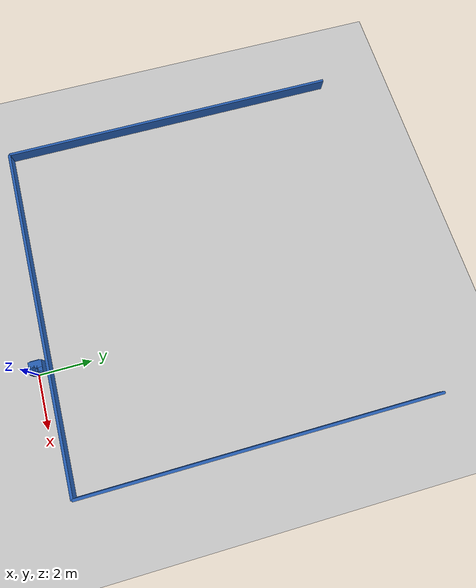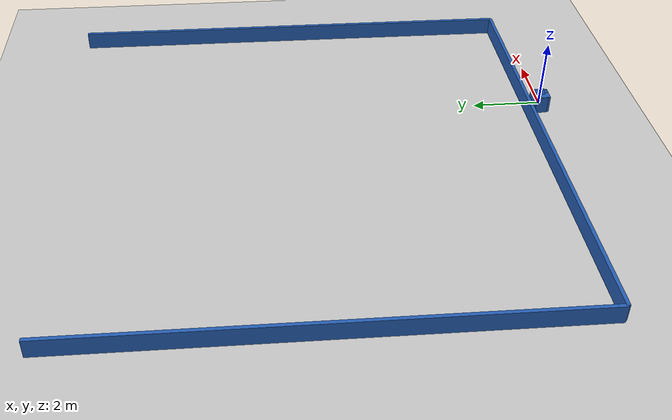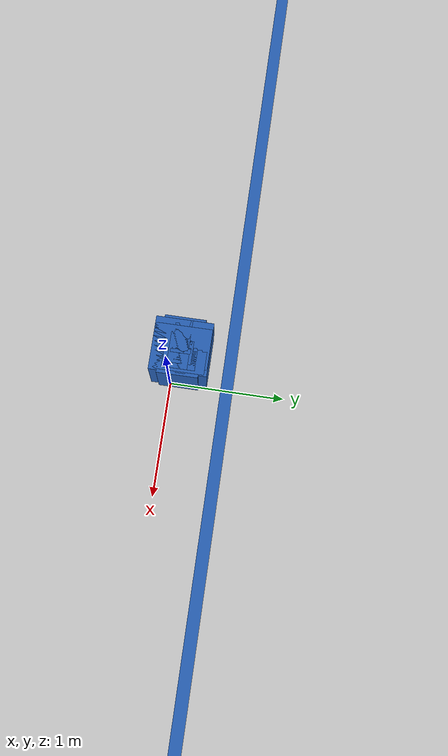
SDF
<?xml version="1.0" ?>
    <sdf version="1.5">
      <world name="default">
        <!-- A global light source -->
        <include>
          <uri>model://sun</uri>
        </include>
        <!-- A ground plane -->
        <include>
          <uri>model://ground_plane</uri>
        </include>

    <model name='libopen_space_final_T2B_57_10'>
      <static>1</static>
      <pose frame=''>-0.225000 0.075000 0.000000 0.000000 0.000000 0.000000</pose>
      <link name='link'>
        <inertial>
          <mass>1</mass>
          <inertia>
            <ixx>0.145833</ixx>
            <ixy>0</ixy>
            <ixz>0</ixz>
            <iyy>0.145833</iyy>
            <iyz>0</iyz>
            <izz>0.125</izz>
          </inertia>
        </inertial>
        <collision name='collision'>
          <geometry>
            <box>
              <size>0.46 0.49 1</size>
            </box>
          </geometry>
          <max_contacts>10</max_contacts>
          <surface>
            <contact>
              <ode/>
            </contact>
            <bounce/>
            <friction>
              <torsional>
                <ode/>
              </torsional>
              <ode/>
            </friction>
          </surface>
        </collision>
        <visual name='visual'>
          <geometry>
            <box>
              <size>0.46 0.49 1</size>
            </box>
          </geometry>
	    <material>
              <ambient>0.152000 0.379000 0.720000 1</ambient>
	      <diffuse>0.152000 0.379000 0.720000 1</diffuse>
          </material>
          <material>
            <script>
              <name>Gazebo/Grey</name>
              <uri>file://media/materials/scripts/gazebo.material</uri>
            </script>
          </material>
        </visual>
        <self_collide>0</self_collide>
        <kinematic>0</kinematic>
        <gravity>1</gravity>
      </link>
      <plugin name='libopen_space_final_T2B_57_10' filename='libopen_space_final_T2B_57_10.so'/>
    </model>

    <model name='libopen_space_final_T2B_118_43'>
      <static>1</static>
      <pose frame=''>-0.225000 0.075000 0.000000 0.000000 0.000000 0.000000</pose>
      <link name='link'>
        <inertial>
          <mass>1</mass>
          <inertia>
            <ixx>0.145833</ixx>
            <ixy>0</ixy>
            <ixz>0</ixz>
            <iyy>0.145833</iyy>
            <iyz>0</iyz>
            <izz>0.125</izz>
          </inertia>
        </inertial>
        <collision name='collision'>
          <geometry>
            <box>
              <size>0.46 0.13 1</size>
            </box>
          </geometry>
          <max_contacts>10</max_contacts>
          <surface>
            <contact>
              <ode/>
            </contact>
            <bounce/>
            <friction>
              <torsional>
                <ode/>
              </torsional>
              <ode/>
            </friction>
          </surface>
        </collision>
        <visual name='visual'>
          <geometry>
            <box>
              <size>0.46 0.13 1</size>
            </box>
          </geometry>
	    <material>
              <ambient>0.152000 0.379000 0.720000 1</ambient>
	      <diffuse>0.152000 0.379000 0.720000 1</diffuse>
          </material>
          <material>
            <script>
              <name>Gazebo/Grey</name>
              <uri>file://media/materials/scripts/gazebo.material</uri>
            </script>
          </material>
        </visual>
        <self_collide>0</self_collide>
        <kinematic>0</kinematic>
        <gravity>1</gravity>
      </link>
      <plugin name='libopen_space_final_T2B_118_43' filename='libopen_space_final_T2B_118_43.so'/>
    </model>

    <model name='libopen_space_final_T2B_111_18'>
      <static>1</static>
      <pose frame=''>-0.225000 0.075000 0.000000 0.000000 0.000000 0.000000</pose>
      <link name='link'>
        <inertial>
          <mass>1</mass>
          <inertia>
            <ixx>0.145833</ixx>
            <ixy>0</ixy>
            <ixz>0</ixz>
            <iyy>0.145833</iyy>
            <iyz>0</iyz>
            <izz>0.125</izz>
          </inertia>
        </inertial>
        <collision name='collision'>
          <geometry>
            <box>
              <size>0.25 0.10 1</size>
            </box>
          </geometry>
          <max_contacts>10</max_contacts>
          <surface>
            <contact>
              <ode/>
            </contact>
            <bounce/>
            <friction>
              <torsional>
                <ode/>
              </torsional>
              <ode/>
            </friction>
          </surface>
        </collision>
        <visual name='visual'>
          <geometry>
            <box>
              <size>0.25 0.10 1</size>
            </box>
          </geometry>
	    <material>
              <ambient>0.152000 0.379000 0.720000 1</ambient>
	      <diffuse>0.152000 0.379000 0.720000 1</diffuse>
          </material>
          <material>
            <script>
              <name>Gazebo/Grey</name>
              <uri>file://media/materials/scripts/gazebo.material</uri>
            </script>
          </material>
        </visual>
        <self_collide>0</self_collide>
        <kinematic>0</kinematic>
        <gravity>1</gravity>
      </link>
      <plugin name='libopen_space_final_T2B_111_18' filename='libopen_space_final_T2B_111_18.so'/>
    </model>

    <model name='libopen_space_final_T2B_55_44'>
      <static>1</static>
      <pose frame=''>-0.225000 0.075000 0.000000 0.000000 0.000000 0.000000</pose>
      <link name='link'>
        <inertial>
          <mass>1</mass>
          <inertia>
            <ixx>0.145833</ixx>
            <ixy>0</ixy>
            <ixz>0</ixz>
            <iyy>0.145833</iyy>
            <iyz>0</iyz>
            <izz>0.125</izz>
          </inertia>
        </inertial>
        <collision name='collision'>
          <geometry>
            <box>
              <size>0.30 0.20 1</size>
            </box>
          </geometry>
          <max_contacts>10</max_contacts>
          <surface>
            <contact>
              <ode/>
            </contact>
            <bounce/>
            <friction>
              <torsional>
                <ode/>
              </torsional>
              <ode/>
            </friction>
          </surface>
        </collision>
        <visual name='visual'>
          <geometry>
            <box>
              <size>0.30 0.20 1</size>
            </box>
          </geometry>
	    <material>
              <ambient>0.152000 0.379000 0.720000 1</ambient>
	      <diffuse>0.152000 0.379000 0.720000 1</diffuse>
          </material>
          <material>
            <script>
              <name>Gazebo/Grey</name>
              <uri>file://media/materials/scripts/gazebo.material</uri>
            </script>
          </material>
        </visual>
        <self_collide>0</self_collide>
        <kinematic>0</kinematic>
        <gravity>1</gravity>
      </link>
      <plugin name='libopen_space_final_T2B_55_44' filename='libopen_space_final_T2B_55_44.so'/>
    </model>

    <model name='libopen_space_final_T2B_141_33'>
      <static>1</static>
      <pose frame=''>-0.225000 0.075000 0.000000 0.000000 0.000000 0.000000</pose>
      <link name='link'>
        <inertial>
          <mass>1</mass>
          <inertia>
            <ixx>0.145833</ixx>
            <ixy>0</ixy>
            <ixz>0</ixz>
            <iyy>0.145833</iyy>
            <iyz>0</iyz>
            <izz>0.125</izz>
          </inertia>
        </inertial>
        <collision name='collision'>
          <geometry>
            <box>
              <size>0.39 0.21 1</size>
            </box>
          </geometry>
          <max_contacts>10</max_contacts>
          <surface>
            <contact>
              <ode/>
            </contact>
            <bounce/>
            <friction>
              <torsional>
                <ode/>
              </torsional>
              <ode/>
            </friction>
          </surface>
        </collision>
        <visual name='visual'>
          <geometry>
            <box>
              <size>0.39 0.21 1</size>
            </box>
          </geometry>
	    <material>
              <ambient>0.152000 0.379000 0.720000 1</ambient>
	      <diffuse>0.152000 0.379000 0.720000 1</diffuse>
          </material>
          <material>
            <script>
              <name>Gazebo/Grey</name>
              <uri>file://media/materials/scripts/gazebo.material</uri>
            </script>
          </material>
        </visual>
        <self_collide>0</self_collide>
        <kinematic>0</kinematic>
        <gravity>1</gravity>
      </link>
      <plugin name='libopen_space_final_T2B_141_33' filename='libopen_space_final_T2B_141_33.so'/>
    </model>

    <model name='libopen_space_final_T2B_134_32'>
      <static>1</static>
      <pose frame=''>-0.225000 0.075000 0.000000 0.000000 0.000000 0.000000</pose>
      <link name='link'>
        <inertial>
          <mass>1</mass>
          <inertia>
            <ixx>0.145833</ixx>
            <ixy>0</ixy>
            <ixz>0</ixz>
            <iyy>0.145833</iyy>
            <iyz>0</iyz>
            <izz>0.125</izz>
          </inertia>
        </inertial>
        <collision name='collision'>
          <geometry>
            <box>
              <size>0.39 0.15 1</size>
            </box>
          </geometry>
          <max_contacts>10</max_contacts>
          <surface>
            <contact>
              <ode/>
            </contact>
            <bounce/>
            <friction>
              <torsional>
                <ode/>
              </torsional>
              <ode/>
            </friction>
          </surface>
        </collision>
        <visual name='visual'>
          <geometry>
            <box>
              <size>0.39 0.15 1</size>
            </box>
          </geometry>
	    <material>
              <ambient>0.152000 0.379000 0.720000 1</ambient>
	      <diffuse>0.152000 0.379000 0.720000 1</diffuse>
          </material>
          <material>
            <script>
              <name>Gazebo/Grey</name>
              <uri>file://media/materials/scripts/gazebo.material</uri>
            </script>
          </material>
        </visual>
        <self_collide>0</self_collide>
        <kinematic>0</kinematic>
        <gravity>1</gravity>
      </link>
      <plugin name='libopen_space_final_T2B_134_32' filename='libopen_space_final_T2B_134_32.so'/>
    </model>

    <model name='libopen_space_final_T2B_67_47'>
      <static>1</static>
      <pose frame=''>-0.225000 0.075000 0.000000 0.000000 0.000000 0.000000</pose>
      <link name='link'>
        <inertial>
          <mass>1</mass>
          <inertia>
            <ixx>0.145833</ixx>
            <ixy>0</ixy>
            <ixz>0</ixz>
            <iyy>0.145833</iyy>
            <iyz>0</iyz>
            <izz>0.125</izz>
          </inertia>
        </inertial>
        <collision name='collision'>
          <geometry>
            <box>
              <size>0.11 0.17 1</size>
            </box>
          </geometry>
          <max_contacts>10</max_contacts>
          <surface>
            <contact>
              <ode/>
            </contact>
            <bounce/>
            <friction>
              <torsional>
                <ode/>
              </torsional>
              <ode/>
            </friction>
          </surface>
        </collision>
        <visual name='visual'>
          <geometry>
            <box>
              <size>0.11 0.17 1</size>
            </box>
          </geometry>
	    <material>
              <ambient>0.152000 0.379000 0.720000 1</ambient>
	      <diffuse>0.152000 0.379000 0.720000 1</diffuse>
          </material>
          <material>
            <script>
              <name>Gazebo/Grey</name>
              <uri>file://media/materials/scripts/gazebo.material</uri>
            </script>
          </material>
        </visual>
        <self_collide>0</self_collide>
        <kinematic>0</kinematic>
        <gravity>1</gravity>
      </link>
      <plugin name='libopen_space_final_T2B_67_47' filename='libopen_space_final_T2B_67_47.so'/>
    </model>

    <model name='libopen_space_final_T2B_115_24'>
      <static>1</static>
      <pose frame=''>-0.225000 0.075000 0.000000 0.000000 0.000000 0.000000</pose>
      <link name='link'>
        <inertial>
          <mass>1</mass>
          <inertia>
            <ixx>0.145833</ixx>
            <ixy>0</ixy>
            <ixz>0</ixz>
            <iyy>0.145833</iyy>
            <iyz>0</iyz>
            <izz>0.125</izz>
          </inertia>
        </inertial>
        <collision name='collision'>
          <geometry>
            <box>
              <size>0.35 0.48 1</size>
            </box>
          </geometry>
          <max_contacts>10</max_contacts>
          <surface>
            <contact>
              <ode/>
            </contact>
            <bounce/>
            <friction>
              <torsional>
                <ode/>
              </torsional>
              <ode/>
            </friction>
          </surface>
        </collision>
        <visual name='visual'>
          <geometry>
            <box>
              <size>0.35 0.48 1</size>
            </box>
          </geometry>
	    <material>
              <ambient>0.152000 0.379000 0.720000 1</ambient>
	      <diffuse>0.152000 0.379000 0.720000 1</diffuse>
          </material>
          <material>
            <script>
              <name>Gazebo/Grey</name>
              <uri>file://media/materials/scripts/gazebo.material</uri>
            </script>
          </material>
        </visual>
        <self_collide>0</self_collide>
        <kinematic>0</kinematic>
        <gravity>1</gravity>
      </link>
      <plugin name='libopen_space_final_T2B_115_24' filename='libopen_space_final_T2B_115_24.so'/>
    </model>

    <model name='libopen_space_final_T2B_80_26'>
      <static>1</static>
      <pose frame=''>-0.225000 0.075000 0.000000 0.000000 0.000000 0.000000</pose>
      <link name='link'>
        <inertial>
          <mass>1</mass>
          <inertia>
            <ixx>0.145833</ixx>
            <ixy>0</ixy>
            <ixz>0</ixz>
            <iyy>0.145833</iyy>
            <iyz>0</iyz>
            <izz>0.125</izz>
          </inertia>
        </inertial>
        <collision name='collision'>
          <geometry>
            <box>
              <size>0.50 0.35 1</size>
            </box>
          </geometry>
          <max_contacts>10</max_contacts>
          <surface>
            <contact>
              <ode/>
            </contact>
            <bounce/>
            <friction>
              <torsional>
                <ode/>
              </torsional>
              <ode/>
            </friction>
          </surface>
        </collision>
        <visual name='visual'>
          <geometry>
            <box>
              <size>0.50 0.35 1</size>
            </box>
          </geometry>
	    <material>
              <ambient>0.152000 0.379000 0.720000 1</ambient>
	      <diffuse>0.152000 0.379000 0.720000 1</diffuse>
          </material>
          <material>
            <script>
              <name>Gazebo/Grey</name>
              <uri>file://media/materials/scripts/gazebo.material</uri>
            </script>
          </material>
        </visual>
        <self_collide>0</self_collide>
        <kinematic>0</kinematic>
        <gravity>1</gravity>
      </link>
      <plugin name='libopen_space_final_T2B_80_26' filename='libopen_space_final_T2B_80_26.so'/>
    </model>

    <model name='libopen_space_final_T2B_81_89'>
      <static>1</static>
      <pose frame=''>-0.225000 0.075000 0.000000 0.000000 0.000000 0.000000</pose>
      <link name='link'>
        <inertial>
          <mass>1</mass>
          <inertia>
            <ixx>0.145833</ixx>
            <ixy>0</ixy>
            <ixz>0</ixz>
            <iyy>0.145833</iyy>
            <iyz>0</iyz>
            <izz>0.125</izz>
          </inertia>
        </inertial>
        <collision name='collision'>
          <geometry>
            <box>
              <size>0.39 0.28 1</size>
            </box>
          </geometry>
          <max_contacts>10</max_contacts>
          <surface>
            <contact>
              <ode/>
            </contact>
            <bounce/>
            <friction>
              <torsional>
                <ode/>
              </torsional>
              <ode/>
            </friction>
          </surface>
        </collision>
        <visual name='visual'>
          <geometry>
            <box>
              <size>0.39 0.28 1</size>
            </box>
          </geometry>
	    <material>
              <ambient>0.152000 0.379000 0.720000 1</ambient>
	      <diffuse>0.152000 0.379000 0.720000 1</diffuse>
          </material>
          <material>
            <script>
              <name>Gazebo/Grey</name>
              <uri>file://media/materials/scripts/gazebo.material</uri>
            </script>
          </material>
        </visual>
        <self_collide>0</self_collide>
        <kinematic>0</kinematic>
        <gravity>1</gravity>
      </link>
      <plugin name='libopen_space_final_T2B_81_89' filename='libopen_space_final_T2B_81_89.so'/>
    </model>

    <model name='libopen_space_final_T2B_112_81'>
      <static>1</static>
      <pose frame=''>-0.225000 0.075000 0.000000 0.000000 0.000000 0.000000</pose>
      <link name='link'>
        <inertial>
          <mass>1</mass>
          <inertia>
            <ixx>0.145833</ixx>
            <ixy>0</ixy>
            <ixz>0</ixz>
            <iyy>0.145833</iyy>
            <iyz>0</iyz>
            <izz>0.125</izz>
          </inertia>
        </inertial>
        <collision name='collision'>
          <geometry>
            <box>
              <size>0.44 0.44 1</size>
            </box>
          </geometry>
          <max_contacts>10</max_contacts>
          <surface>
            <contact>
              <ode/>
            </contact>
            <bounce/>
            <friction>
              <torsional>
                <ode/>
              </torsional>
              <ode/>
            </friction>
          </surface>
        </collision>
        <visual name='visual'>
          <geometry>
            <box>
              <size>0.44 0.44 1</size>
            </box>
          </geometry>
	    <material>
              <ambient>0.152000 0.379000 0.720000 1</ambient>
	      <diffuse>0.152000 0.379000 0.720000 1</diffuse>
          </material>
          <material>
            <script>
              <name>Gazebo/Grey</name>
              <uri>file://media/materials/scripts/gazebo.material</uri>
            </script>
          </material>
        </visual>
        <self_collide>0</self_collide>
        <kinematic>0</kinematic>
        <gravity>1</gravity>
      </link>
      <plugin name='libopen_space_final_T2B_112_81' filename='libopen_space_final_T2B_112_81.so'/>
    </model>

    <model name='libopen_space_final_T2B_118_50'>
      <static>1</static>
      <pose frame=''>-0.225000 0.075000 0.000000 0.000000 0.000000 0.000000</pose>
      <link name='link'>
        <inertial>
          <mass>1</mass>
          <inertia>
            <ixx>0.145833</ixx>
            <ixy>0</ixy>
            <ixz>0</ixz>
            <iyy>0.145833</iyy>
            <iyz>0</iyz>
            <izz>0.125</izz>
          </inertia>
        </inertial>
        <collision name='collision'>
          <geometry>
            <box>
              <size>0.12 0.17 1</size>
            </box>
          </geometry>
          <max_contacts>10</max_contacts>
          <surface>
            <contact>
              <ode/>
            </contact>
            <bounce/>
            <friction>
              <torsional>
                <ode/>
              </torsional>
              <ode/>
            </friction>
          </surface>
        </collision>
        <visual name='visual'>
          <geometry>
            <box>
              <size>0.12 0.17 1</size>
            </box>
          </geometry>
	    <material>
              <ambient>0.152000 0.379000 0.720000 1</ambient>
	      <diffuse>0.152000 0.379000 0.720000 1</diffuse>
          </material>
          <material>
            <script>
              <name>Gazebo/Grey</name>
              <uri>file://media/materials/scripts/gazebo.material</uri>
            </script>
          </material>
        </visual>
        <self_collide>0</self_collide>
        <kinematic>0</kinematic>
        <gravity>1</gravity>
      </link>
      <plugin name='libopen_space_final_T2B_118_50' filename='libopen_space_final_T2B_118_50.so'/>
    </model>

        <model name='bottom_wall'>
          <static>1</static>
          <pose frame=''>-2.25 0.5 0.000000 0.000000 0.000000 1.57079632</pose>
          <link name='link'>
            <inertial>
            <mass>1</mass>
            <inertia>
              <ixx>0.145833</ixx>
              <ixy>0</ixy>
              <ixz>0</ixz>
              <iyy>0.145833</iyy>
              <iyz>0</iyz>
              <izz>0.125</izz>
            </inertia>
            </inertial>
            <collision name='collision'>
            <geometry>
              <box>
              <size>0.1 13.5 1</size>
              </box>
            </geometry>
            <max_contacts>10</max_contacts>
            <surface>
              <contact>
              <ode/>
              </contact>
              <bounce/>
              <friction>
              <torsional>
                <ode/>
              </torsional>
              <ode/>
              </friction>
            </surface>
            </collision>
            <visual name='visual'>
            <geometry>
              <box>
              <size>0.1 13.5 1</size>
              </box>
            </geometry>
            <material>
              <ambient>0.152000 0.379000 0.720000 1</ambient>
            <diffuse>0.152000 0.379000 0.720000 1</diffuse>
            </material>
            <material>
              <script>
              <name>Gazebo/Grey</name>
              <uri>file://media/materials/scripts/gazebo.material</uri>
              </script>
            </material>
            </visual>
            <self_collide>0</self_collide>
            <kinematic>0</kinematic>
            <gravity>1</gravity>
          </link>
        </model>

        <model name='left_wall'>
          <static>1</static>
          <pose frame=''>-9 7.25 0.000000 0.000000 0.000000 0.000000</pose>
          <link name='link'>
            <inertial>
            <mass>1</mass>
            <inertia>
              <ixx>0.145833</ixx>
              <ixy>0</ixy>
              <ixz>0</ixz>
              <iyy>0.145833</iyy>
              <iyz>0</iyz>
              <izz>0.125</izz>
            </inertia>
            </inertial>
            <collision name='collision'>
            <geometry>
              <box>
              <size>0.1 13.5 1</size>
              </box>
            </geometry>
            <max_contacts>10</max_contacts>
            <surface>
              <contact>
              <ode/>
              </contact>
              <bounce/>
              <friction>
              <torsional>
                <ode/>
              </torsional>
              <ode/>
              </friction>
            </surface>
            </collision>
            <visual name='visual'>
            <geometry>
              <box>
              <size>0.1 13.5 1</size>
              </box>
            </geometry>
            <material>
              <ambient>0.152000 0.379000 0.720000 1</ambient>
            <diffuse>0.152000 0.379000 0.720000 1</diffuse>
            </material>
            <material>
              <script>
              <name>Gazebo/Grey</name>
              <uri>file://media/materials/scripts/gazebo.material</uri>
              </script>
            </material>
            </visual>
            <self_collide>0</self_collide>
            <kinematic>0</kinematic>
            <gravity>1</gravity>
          </link>
        </model>

        <model name='right_wall'>
          <static>1</static>
          <pose frame=''>4.5 7.25 0.000000 0.000000 0.000000 0.000000</pose>
          <link name='link'>
            <inertial>
            <mass>1</mass>
            <inertia>
              <ixx>0.145833</ixx>
              <ixy>0</ixy>
              <ixz>0</ixz>
              <iyy>0.145833</iyy>
              <iyz>0</iyz>
              <izz>0.125</izz>
            </inertia>
            </inertial>
            <collision name='collision'>
            <geometry>
              <box>
              <size>0.1 13.5 1</size>
              </box>
            </geometry>
            <max_contacts>10</max_contacts>
            <surface>
              <contact>
              <ode/>
              </contact>
              <bounce/>
              <friction>
              <torsional>
                <ode/>
              </torsional>
              <ode/>
              </friction>
            </surface>
            </collision>
            <visual name='visual'>
            <geometry>
              <box>
              <size>0.1 13.5 1</size>
              </box>
            </geometry>
            <material>
              <ambient>0.152000 0.379000 0.720000 1</ambient>
            <diffuse>0.152000 0.379000 0.720000 1</diffuse>
            </material>
            <material>
              <script>
              <name>Gazebo/Grey</name>
              <uri>file://media/materials/scripts/gazebo.material</uri>
              </script>
            </material>
            </visual>
            <self_collide>0</self_collide>
            <kinematic>0</kinematic>
            <gravity>1</gravity>
          </link>
        </model>

      </world>
    </sdf>"
